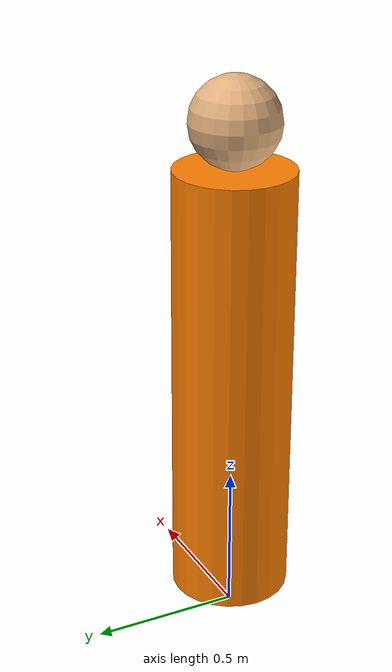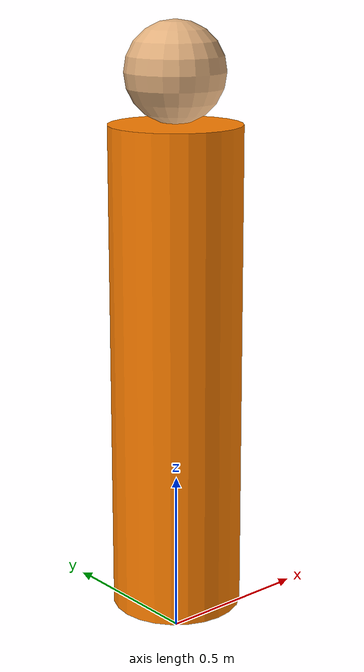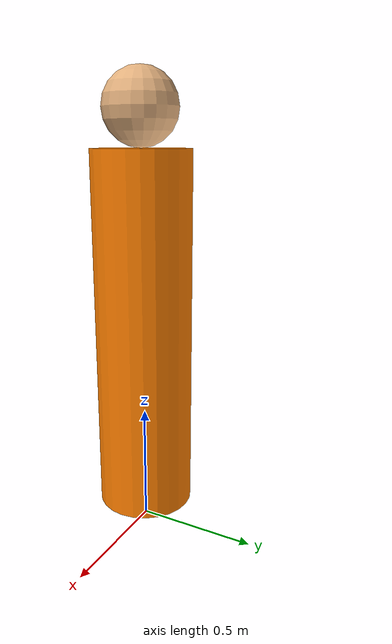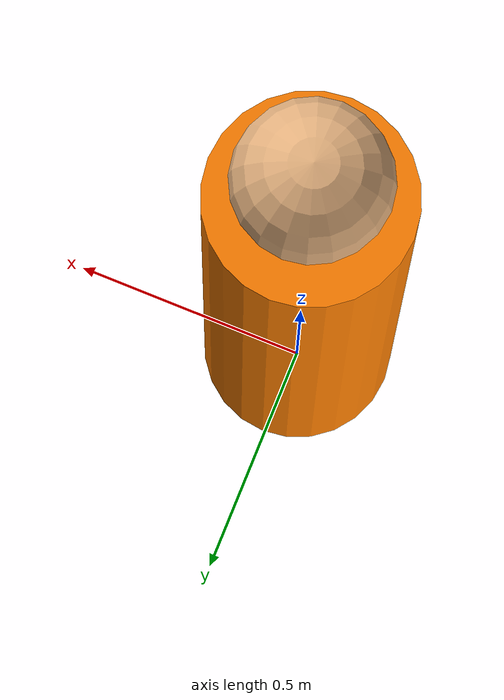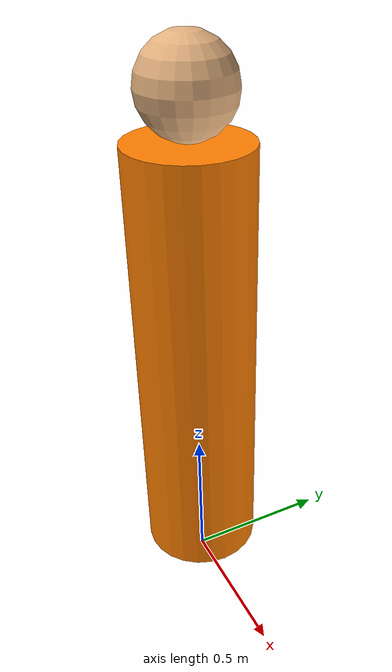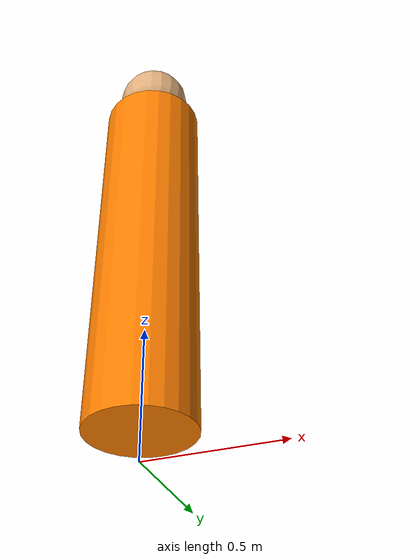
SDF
<?xml version="1.0" ?>
<sdf version="1.6">
  <model name="human">
    <static>false</static>
    <link name="body">
      <!-- Main body: cylinder representing human torso + legs -->
      <pose>0 0 0.85 0 0 0</pose>

      <visual name="body_visual">
        <geometry>
          <cylinder>
            <radius>0.2</radius>
            <length>1.5</length>
          </cylinder>
        </geometry>
        <material>
          <ambient>1.0 0.5 0.0 1</ambient>
          <diffuse>1.0 0.5 0.0 1</diffuse>
          <specular>0.1 0.1 0.1 1</specular>
        </material>
      </visual>

      <collision name="body_collision">
        <geometry>
          <cylinder>
            <radius>0.2</radius>
            <length>1.5</length>
          </cylinder>
        </geometry>
      </collision>

      <!-- Head: sphere on top -->
      <visual name="head_visual">
        <pose>0 0 0.9 0 0 0</pose>
        <geometry>
          <sphere>
            <radius>0.15</radius>
          </sphere>
        </geometry>
        <material>
          <ambient>0.9 0.7 0.5 1</ambient>
          <diffuse>0.9 0.7 0.5 1</diffuse>
          <specular>0.1 0.1 0.1 1</specular>
        </material>
      </visual>

      <collision name="head_collision">
        <pose>0 0 0.9 0 0 0</pose>
        <geometry>
          <sphere>
            <radius>0.15</radius>
          </sphere>
        </geometry>
      </collision>

      <inertial>
        <mass>70.0</mass>
        <pose>0 0 -0.85 0 0 0</pose> <!-- Low CoM to prevent toppling -->
        <inertia>
          <ixx>100.0</ixx>
          <iyy>100.0</iyy>
          <izz>2.0</izz>
        </inertia>
      </inertial>
    </link>

    <plugin name="human_drive" filename="libgazebo_ros_planar_move.so">
      <command_topic>cmd_vel</command_topic>
      <odometry_topic>odom</odometry_topic>
      <odometry_frame>odom</odometry_frame>
      <odometry_rate>20.0</odometry_rate>
      <robot_base_frame>body</robot_base_frame>
      <publish_odom>true</publish_odom>
      <publish_odom_tf>false</publish_odom_tf>
    </plugin>
  </model>
</sdf>
